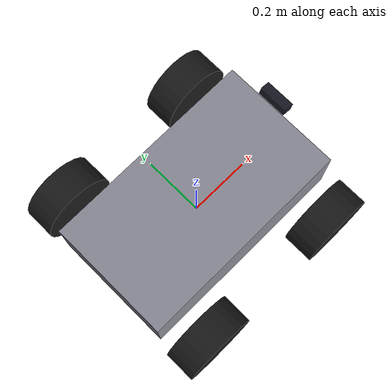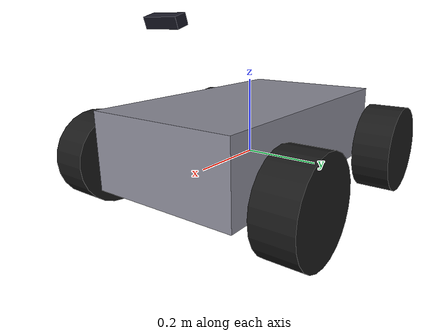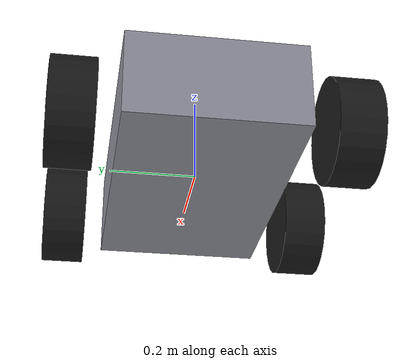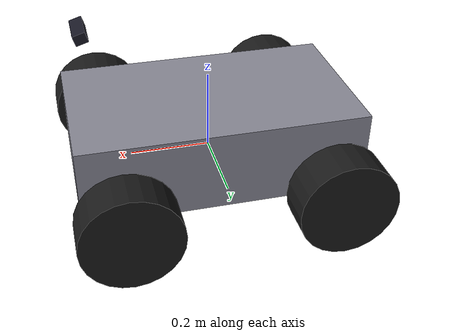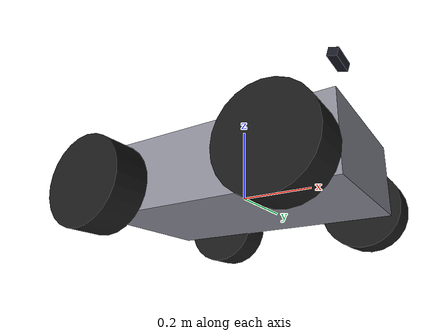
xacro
<?xml version="1.0"?>
<robot name="rtt_rover" xmlns:xacro="http://www.ros.org/wiki/xacro">

  <xacro:property name="PI" value="3.14159265359"/>

  <!-- chassis -->
  <xacro:property name="chassis_l" value="0.70"/>
  <xacro:property name="chassis_w" value="0.40"/>
  <xacro:property name="chassis_h" value="0.20"/>
  <xacro:property name="chassis_mass" value="20.0"/>

  <!-- wheels (4 wheel skid steer) -->
  <xacro:property name="wheel_r" value="0.12"/>
  <xacro:property name="wheel_w" value="0.10"/>
  <xacro:property name="wheel_mass" value="1.5"/>
  <xacro:property name="wheel_x" value="0.25"/>
  <xacro:property name="wheel_y" value="0.30"/>

  <!-- camera mount (GUESS: about 0.35 m up, tilted 0.3 rad down) -->
  <xacro:property name="cam_x" value="0.30"/>
  <xacro:property name="cam_z" value="0.35"/>
  <xacro:property name="cam_pitch" value="0.3"/>

  <link name="base_link"/>

  <link name="chassis_link">
    <visual>
      <geometry><box size="${chassis_l} ${chassis_w} ${chassis_h}"/></geometry>
      <material name="chassis_grey"><color rgba="0.55 0.55 0.6 1"/></material>
    </visual>
    <collision>
      <geometry><box size="${chassis_l} ${chassis_w} ${chassis_h}"/></geometry>
    </collision>
    <inertial>
      <mass value="${chassis_mass}"/>
      <inertia ixx="${chassis_mass/12*(chassis_w*chassis_w+chassis_h*chassis_h)}" ixy="0" ixz="0"
               iyy="${chassis_mass/12*(chassis_l*chassis_l+chassis_h*chassis_h)}" iyz="0"
               izz="${chassis_mass/12*(chassis_l*chassis_l+chassis_w*chassis_w)}"/>
    </inertial>
  </link>
  <joint name="base_to_chassis" type="fixed">
    <parent link="base_link"/>
    <child link="chassis_link"/>
    <origin xyz="0 0 0.05" rpy="0 0 0"/>
  </joint>

  <xacro:macro name="wheel" params="name x y">
    <link name="${name}_wheel">
      <visual>
        <origin xyz="0 0 0" rpy="${PI/2} 0 0"/>
        <geometry><cylinder radius="${wheel_r}" length="${wheel_w}"/></geometry>
        <material name="wheel_black"><color rgba="0.1 0.1 0.1 1"/></material>
      </visual>
      <collision>
        <origin xyz="0 0 0" rpy="${PI/2} 0 0"/>
        <geometry><cylinder radius="${wheel_r}" length="${wheel_w}"/></geometry>
      </collision>
      <inertial>
        <mass value="${wheel_mass}"/>
        <inertia ixx="${wheel_mass/12*(3*wheel_r*wheel_r+wheel_w*wheel_w)}" ixy="0" ixz="0"
                 iyy="${0.5*wheel_mass*wheel_r*wheel_r}" iyz="0"
                 izz="${wheel_mass/12*(3*wheel_r*wheel_r+wheel_w*wheel_w)}"/>
      </inertial>
    </link>
    <joint name="${name}_wheel_joint" type="continuous">
      <parent link="base_link"/>
      <child link="${name}_wheel"/>
      <origin xyz="${x} ${y} 0" rpy="0 0 0"/>
      <axis xyz="0 1 0"/>
    </joint>
    <!-- TODO: tune friction. Skid steering needs the sideways friction (mu2) lower than mu1. -->
    <gazebo reference="${name}_wheel">
      <mu1>1.0</mu1>
      <mu2>0.4</mu2>
    </gazebo>
  </xacro:macro>

  <xacro:wheel name="fl" x="${wheel_x}"  y="${wheel_y}"/>
  <xacro:wheel name="rl" x="${-wheel_x}" y="${wheel_y}"/>
  <xacro:wheel name="fr" x="${wheel_x}"  y="${-wheel_y}"/>
  <xacro:wheel name="rr" x="${-wheel_x}" y="${-wheel_y}"/>

  <!-- camera, same frame layout as the RealSense driver -->
  <link name="camera_link">
    <visual>
      <geometry><box size="0.03 0.09 0.025"/></geometry>
      <material name="camera_dark"><color rgba="0.1 0.1 0.15 1"/></material>
    </visual>
    <inertial>
      <mass value="0.1"/>
      <inertia ixx="0.0001" ixy="0" ixz="0" iyy="0.0001" iyz="0" izz="0.0001"/>
    </inertial>
  </link>
  <joint name="base_to_camera" type="fixed">
    <parent link="base_link"/>
    <child link="camera_link"/>
    <origin xyz="${cam_x} 0 ${cam_z}" rpy="0 ${cam_pitch} 0"/>
  </joint>

  <link name="camera_color_optical_frame"/>
  <joint name="camera_to_optical" type="fixed">
    <parent link="camera_link"/>
    <child link="camera_color_optical_frame"/>
    <origin xyz="0 0 0" rpy="${-PI/2} 0 ${-PI/2}"/>
  </joint>

  <gazebo reference="camera_link">
    <sensor name="camera" type="rgbd_camera">
      <always_on>true</always_on>
      <update_rate>15</update_rate>
      <topic>/camera/camera</topic>
      <gz_frame_id>camera_color_optical_frame</gz_frame_id>
      <camera>
        <horizontal_fov>1.204</horizontal_fov>
        <image>
          <width>424</width>
          <height>240</height>
        </image>
        <clip>
          <near>0.1</near>
          <far>10.0</far>
        </clip>
      </camera>
    </sensor>
  </gazebo>

  <!-- IMU at the center of base_link (GUESS) -->
  <link name="imu_link">
    <inertial>
      <mass value="0.05"/>
      <inertia ixx="0.00001" ixy="0" ixz="0" iyy="0.00001" iyz="0" izz="0.00001"/>
    </inertial>
  </link>
  <joint name="base_to_imu" type="fixed">
    <parent link="base_link"/>
    <child link="imu_link"/>
    <origin xyz="0 0 0.1" rpy="0 0 0"/>
  </joint>

  <gazebo reference="imu_link">
    <sensor name="imu" type="imu">
      <always_on>true</always_on>
      <update_rate>100</update_rate>
      <topic>/imu/data_raw</topic>
      <gz_frame_id>imu_link</gz_frame_id>
      <imu>
        <angular_velocity>
          <x><noise type="gaussian"><mean>0</mean><stddev>6.98e-4</stddev>
             <dynamic_bias_stddev>3.88e-5</dynamic_bias_stddev>
             <dynamic_bias_correlation_time>1000</dynamic_bias_correlation_time>
          </noise></x>
          <y><noise type="gaussian"><mean>0</mean><stddev>6.98e-4</stddev>
             <dynamic_bias_stddev>3.88e-5</dynamic_bias_stddev>
             <dynamic_bias_correlation_time>1000</dynamic_bias_correlation_time>
          </noise></y>
          <z><noise type="gaussian"><mean>0</mean><stddev>6.98e-4</stddev>
             <dynamic_bias_stddev>3.88e-5</dynamic_bias_stddev>
             <dynamic_bias_correlation_time>1000</dynamic_bias_correlation_time>
          </noise></z>
        </angular_velocity>
        <linear_acceleration>
          <x><noise type="gaussian"><mean>0</mean><stddev>1.47e-3</stddev>
            <dynamic_bias_stddev>1.47e-4</dynamic_bias_stddev>
            <dynamic_bias_correlation_time>1000</dynamic_bias_correlation_time>
          </noise></x>
          <y><noise type="gaussian"><mean>0</mean><stddev>1.47e-3</stddev>
            <dynamic_bias_stddev>1.47e-4</dynamic_bias_stddev>
            <dynamic_bias_correlation_time>1000</dynamic_bias_correlation_time>
          </noise></y>
          <z><noise type="gaussian"><mean>0</mean><stddev>1.47e-3</stddev>
            <dynamic_bias_stddev>1.47e-4</dynamic_bias_stddev>
            <dynamic_bias_correlation_time>1000</dynamic_bias_correlation_time>
          </noise></z>
        </linear_acceleration>
      </imu>
    </sensor>
  </gazebo>

  <!-- Gazebo plugins -->
  <gazebo>
    <!-- 4 wheel skid steer. Wheel odometry goes out on /wheel/odom_raw. Its TF is not bridged,
         so the EKF stays the only publisher of odom -> base_link. -->
    <plugin filename="gz-sim-diff-drive-system" name="gz::sim::systems::DiffDrive">
      <left_joint>fl_wheel_joint</left_joint>
      <left_joint>rl_wheel_joint</left_joint>
      <right_joint>fr_wheel_joint</right_joint>
      <right_joint>rr_wheel_joint</right_joint>
      <wheel_separation>${2*wheel_y}</wheel_separation>
      <wheel_radius>${wheel_r}</wheel_radius>
      <odom_publish_frequency>30</odom_publish_frequency>
      <topic>/cmd_vel</topic>
      <odom_topic>/wheel/odom_raw</odom_topic>
      <frame_id>odom</frame_id>
      <child_frame_id>base_link</child_frame_id>
      <max_linear_velocity>1.5</max_linear_velocity>
      <max_angular_velocity>2.0</max_angular_velocity>
    </plugin>

    <plugin filename="gz-sim-joint-state-publisher-system" name="gz::sim::systems::JointStatePublisher">
      <topic>/joint_states</topic>
    </plugin>
  </gazebo>

</robot>
